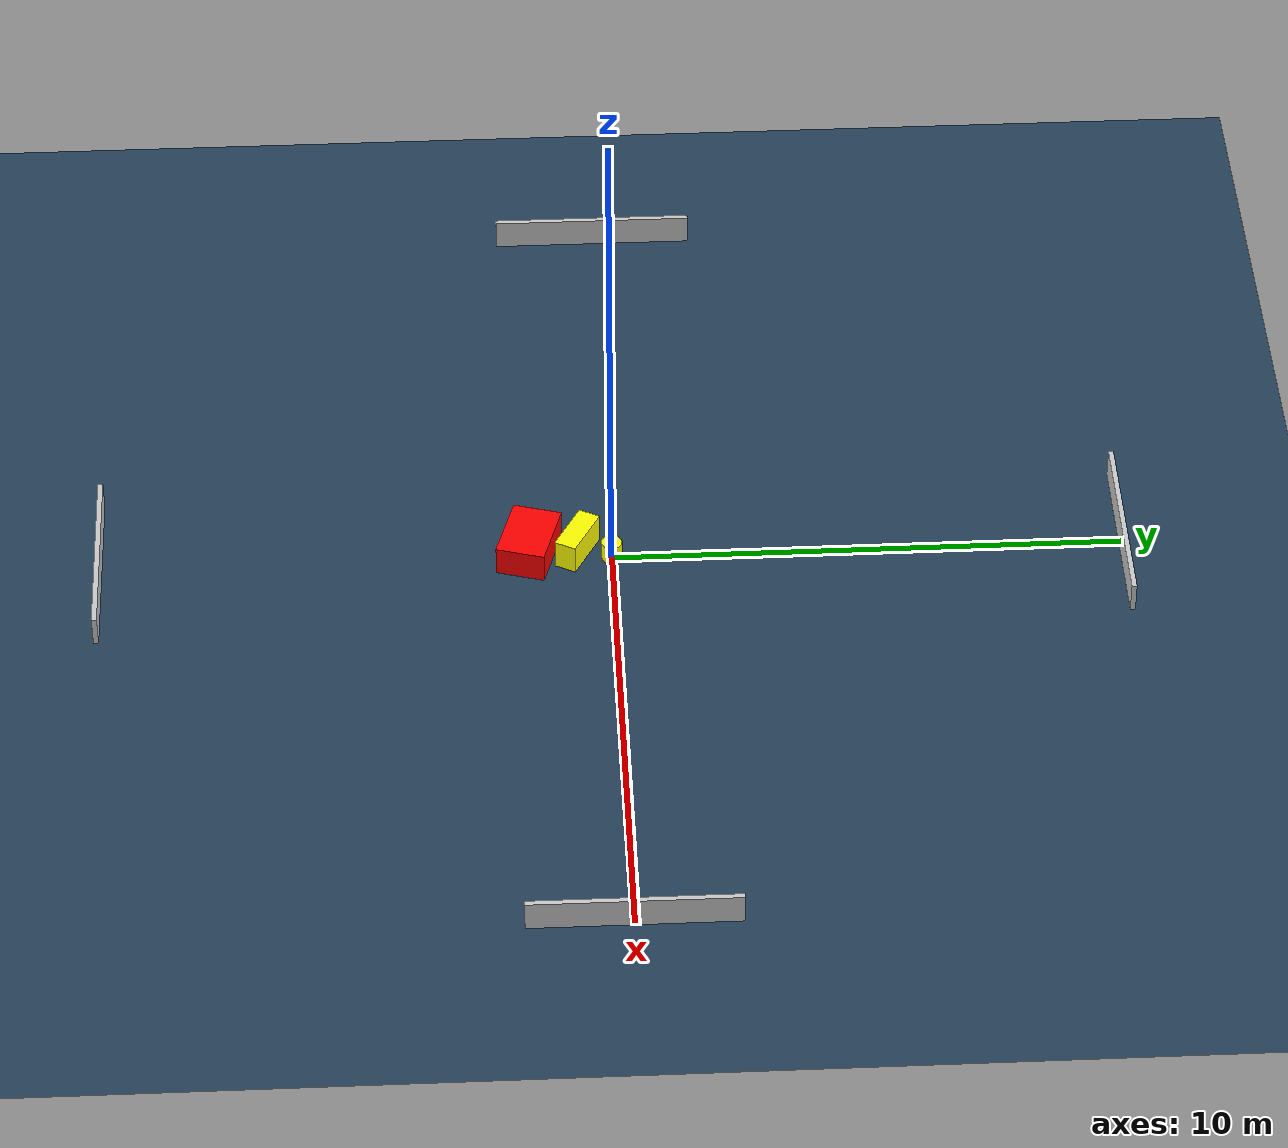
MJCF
<?xml version="1.0" ?>
<mujoco model="generated_environment">
  <option timestep="0.01" integrator="RK4" cone="elliptic"/>
  <default>
    <geom density="1"/>
  </default>
  <asset>
    <texture builtin="gradient" height="3072" name="skybox" rgb1="0.3 0.5 0.7" rgb2="0 0 0" type="skybox" width="512"/>
    <texture builtin="checker" height="300" name="groundplane" rgb1="0.2 0.3 0.4" rgb2="0.1 0.2 0.3" type="2d" width="300"/>
    <material name="groundplane" reflectance="0.2" texrepeat="5 5" texture="groundplane"/>
  </asset>
  <worldbody>
    <light dir="0 0 -1" directional="true" pos="0 0 1.5"/>
    <geom condim="3" friction="0.5 0.005 0.001" material="groundplane" name="floor" pos="0 0 0" size="0 0 0.05" type="plane"/>
    <body name="walls">
      <geom name="wall_1" condim="4" pos="-10.0 0.0 0.3" rgba="0.800000011920929 0.800000011920929 0.800000011920929 1.0" size="0.05 2.0 0.3" type="box"/>
      <geom name="wall_2" condim="4" pos="10.0 0.0 0.3" rgba="0.800000011920929 0.800000011920929 0.800000011920929 1.0" size="0.05 2.0 0.3" type="box"/>
      <geom name="wall_3" condim="4" pos="0.0 -10.0 0.3" rgba="0.800000011920929 0.800000011920929 0.800000011920929 1.0" size="2.0 0.05 0.3" type="box"/>
      <geom name="wall_4" condim="4" pos="0.0 10.0 0.3" rgba="0.800000011920929 0.800000011920929 0.800000011920929 1.0" size="2.0 0.05 0.3" type="box"/>
    </body>
    <body name="robot">
      <joint name="joint_x" type="slide" pos="0 0 0" axis="1 0 0"/>
      <joint name="joint_y" type="slide" pos="0 0 0" axis="0 1 0"/>
      <geom name="robot" type="cylinder" pos="0.0 0.0 0.2" size="0.2 0.2 0.0" mass="5.0" friction="1.0 0.005 0.0001" condim="4" rgba="1.0 1.0 0.0 1.0"/>
    </body>
    <body name="obstacle_1_movable">
      <geom name="obstacle_1_movable" condim="4" pos="-0.18068781684543436 -0.661561094929207 0.3" euler="0 0 331.5269904632387" friction="0.0 0.005 0.001" rgba="1.0 1.0 0.0 1.0" size="0.5385594108539908 0.2191698514552227 0.3" type="box" mass="0.1"/>
      <joint type="free"/>
    </body>
    <body name="obstacle_2_static">
      <geom name="obstacle_2_static" condim="4" pos="-0.17960911380250907 -1.6099621175139853 0.3" euler="0 0 253.53123707856153" friction="0.0 0.005 0.001" rgba="1.0 0.0 0.0 1.0" size="0.4838205911956095 0.6786287322648124 0.3" type="box"/>
    </body>
  </worldbody>
  <actuator>
    <motor name="actuator_x" joint="joint_x" gear="1" ctrlrange="-1 1"/>
    <motor name="actuator_y" joint="joint_y" gear="1" ctrlrange="-1 1"/>
  </actuator>
</mujoco>
